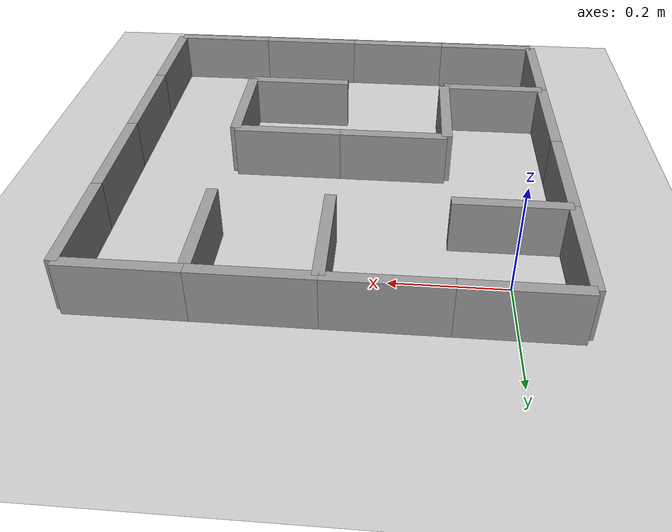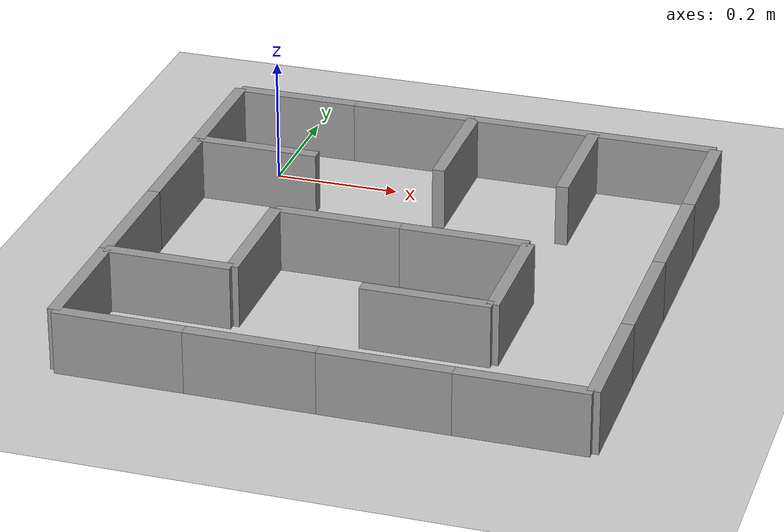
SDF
<?xml version="1.0" ?>
<sdf version="1.6">
  <world name="micromouse_world">

    <include>
      <uri>model://ground_plane</uri>
    </include>

    <model name="wall_1">
      <static>true</static>
      <pose>-0.1 0.0 0.05 0 0 0</pose>
      <link name="link">
        <collision name="collision">
          <geometry>
            <box><size>0.02 0.2 0.1</size></box>
          </geometry>
        </collision>
        <visual name="visual">
          <geometry>
            <box><size>0.02 0.2 0.1</size></box>
          </geometry>
          <material><ambient>0.6 0.6 0.6 1</ambient></material>
        </visual>
      </link>
    </model>

    <model name="wall_2">
      <static>true</static>
      <pose>0.0 0.1 0.05 0 0 0</pose>
      <link name="link">
        <collision name="collision">
          <geometry>
            <box><size>0.2 0.02 0.1</size></box>
          </geometry>
        </collision>
        <visual name="visual">
          <geometry>
            <box><size>0.2 0.02 0.1</size></box>
          </geometry>
          <material><ambient>0.6 0.6 0.6 1</ambient></material>
        </visual>
      </link>
    </model>

    <model name="wall_3">
      <static>true</static>
      <pose>0.2 0.1 0.05 0 0 0</pose>
      <link name="link">
        <collision name="collision">
          <geometry>
            <box><size>0.2 0.02 0.1</size></box>
          </geometry>
        </collision>
        <visual name="visual">
          <geometry>
            <box><size>0.2 0.02 0.1</size></box>
          </geometry>
          <material><ambient>0.6 0.6 0.6 1</ambient></material>
        </visual>
      </link>
    </model>

    <model name="wall_4">
      <static>true</static>
      <pose>0.30000000000000004 0.0 0.05 0 0 0</pose>
      <link name="link">
        <collision name="collision">
          <geometry>
            <box><size>0.02 0.2 0.1</size></box>
          </geometry>
        </collision>
        <visual name="visual">
          <geometry>
            <box><size>0.02 0.2 0.1</size></box>
          </geometry>
          <material><ambient>0.6 0.6 0.6 1</ambient></material>
        </visual>
      </link>
    </model>

    <model name="wall_5">
      <static>true</static>
      <pose>0.4 0.1 0.05 0 0 0</pose>
      <link name="link">
        <collision name="collision">
          <geometry>
            <box><size>0.2 0.02 0.1</size></box>
          </geometry>
        </collision>
        <visual name="visual">
          <geometry>
            <box><size>0.2 0.02 0.1</size></box>
          </geometry>
          <material><ambient>0.6 0.6 0.6 1</ambient></material>
        </visual>
      </link>
    </model>

    <model name="wall_6">
      <static>true</static>
      <pose>0.5000000000000001 0.0 0.05 0 0 0</pose>
      <link name="link">
        <collision name="collision">
          <geometry>
            <box><size>0.02 0.2 0.1</size></box>
          </geometry>
        </collision>
        <visual name="visual">
          <geometry>
            <box><size>0.02 0.2 0.1</size></box>
          </geometry>
          <material><ambient>0.6 0.6 0.6 1</ambient></material>
        </visual>
      </link>
    </model>

    <model name="wall_7">
      <static>true</static>
      <pose>0.6000000000000001 0.1 0.05 0 0 0</pose>
      <link name="link">
        <collision name="collision">
          <geometry>
            <box><size>0.2 0.02 0.1</size></box>
          </geometry>
        </collision>
        <visual name="visual">
          <geometry>
            <box><size>0.2 0.02 0.1</size></box>
          </geometry>
          <material><ambient>0.6 0.6 0.6 1</ambient></material>
        </visual>
      </link>
    </model>

    <model name="wall_8">
      <static>true</static>
      <pose>-0.1 -0.2 0.05 0 0 0</pose>
      <link name="link">
        <collision name="collision">
          <geometry>
            <box><size>0.02 0.2 0.1</size></box>
          </geometry>
        </collision>
        <visual name="visual">
          <geometry>
            <box><size>0.02 0.2 0.1</size></box>
          </geometry>
          <material><ambient>0.6 0.6 0.6 1</ambient></material>
        </visual>
      </link>
    </model>

    <model name="wall_9">
      <static>true</static>
      <pose>0.0 -0.1 0.05 0 0 0</pose>
      <link name="link">
        <collision name="collision">
          <geometry>
            <box><size>0.2 0.02 0.1</size></box>
          </geometry>
        </collision>
        <visual name="visual">
          <geometry>
            <box><size>0.2 0.02 0.1</size></box>
          </geometry>
          <material><ambient>0.6 0.6 0.6 1</ambient></material>
        </visual>
      </link>
    </model>

    <model name="wall_10">
      <static>true</static>
      <pose>-0.1 -0.4 0.05 0 0 0</pose>
      <link name="link">
        <collision name="collision">
          <geometry>
            <box><size>0.02 0.2 0.1</size></box>
          </geometry>
        </collision>
        <visual name="visual">
          <geometry>
            <box><size>0.02 0.2 0.1</size></box>
          </geometry>
          <material><ambient>0.6 0.6 0.6 1</ambient></material>
        </visual>
      </link>
    </model>

    <model name="wall_11">
      <static>true</static>
      <pose>0.1 -0.4 0.05 0 0 0</pose>
      <link name="link">
        <collision name="collision">
          <geometry>
            <box><size>0.02 0.2 0.1</size></box>
          </geometry>
        </collision>
        <visual name="visual">
          <geometry>
            <box><size>0.02 0.2 0.1</size></box>
          </geometry>
          <material><ambient>0.6 0.6 0.6 1</ambient></material>
        </visual>
      </link>
    </model>

    <model name="wall_12">
      <static>true</static>
      <pose>0.2 -0.30000000000000004 0.05 0 0 0</pose>
      <link name="link">
        <collision name="collision">
          <geometry>
            <box><size>0.2 0.02 0.1</size></box>
          </geometry>
        </collision>
        <visual name="visual">
          <geometry>
            <box><size>0.2 0.02 0.1</size></box>
          </geometry>
          <material><ambient>0.6 0.6 0.6 1</ambient></material>
        </visual>
      </link>
    </model>

    <model name="wall_13">
      <static>true</static>
      <pose>0.4 -0.30000000000000004 0.05 0 0 0</pose>
      <link name="link">
        <collision name="collision">
          <geometry>
            <box><size>0.2 0.02 0.1</size></box>
          </geometry>
        </collision>
        <visual name="visual">
          <geometry>
            <box><size>0.2 0.02 0.1</size></box>
          </geometry>
          <material><ambient>0.6 0.6 0.6 1</ambient></material>
        </visual>
      </link>
    </model>

    <model name="wall_14">
      <static>true</static>
      <pose>0.5000000000000001 -0.4 0.05 0 0 0</pose>
      <link name="link">
        <collision name="collision">
          <geometry>
            <box><size>0.02 0.2 0.1</size></box>
          </geometry>
        </collision>
        <visual name="visual">
          <geometry>
            <box><size>0.02 0.2 0.1</size></box>
          </geometry>
          <material><ambient>0.6 0.6 0.6 1</ambient></material>
        </visual>
      </link>
    </model>

    <model name="wall_15">
      <static>true</static>
      <pose>-0.1 -0.6000000000000001 0.05 0 0 0</pose>
      <link name="link">
        <collision name="collision">
          <geometry>
            <box><size>0.02 0.2 0.1</size></box>
          </geometry>
        </collision>
        <visual name="visual">
          <geometry>
            <box><size>0.02 0.2 0.1</size></box>
          </geometry>
          <material><ambient>0.6 0.6 0.6 1</ambient></material>
        </visual>
      </link>
    </model>

    <model name="wall_16">
      <static>true</static>
      <pose>0.0 -0.5000000000000001 0.05 0 0 0</pose>
      <link name="link">
        <collision name="collision">
          <geometry>
            <box><size>0.2 0.02 0.1</size></box>
          </geometry>
        </collision>
        <visual name="visual">
          <geometry>
            <box><size>0.2 0.02 0.1</size></box>
          </geometry>
          <material><ambient>0.6 0.6 0.6 1</ambient></material>
        </visual>
      </link>
    </model>

    <model name="wall_17">
      <static>true</static>
      <pose>0.4 -0.5000000000000001 0.05 0 0 0</pose>
      <link name="link">
        <collision name="collision">
          <geometry>
            <box><size>0.2 0.02 0.1</size></box>
          </geometry>
        </collision>
        <visual name="visual">
          <geometry>
            <box><size>0.2 0.02 0.1</size></box>
          </geometry>
          <material><ambient>0.6 0.6 0.6 1</ambient></material>
        </visual>
      </link>
    </model>

    <model name="wall_18">
      <static>true</static>
      <pose>0.7000000000000001 0.0 0.05 0 0 0</pose>
      <link name="link">
        <collision name="collision">
          <geometry>
            <box><size>0.02 0.2 0.1</size></box>
          </geometry>
        </collision>
        <visual name="visual">
          <geometry>
            <box><size>0.02 0.2 0.1</size></box>
          </geometry>
          <material><ambient>0.6 0.6 0.6 1</ambient></material>
        </visual>
      </link>
    </model>

    <model name="wall_19">
      <static>true</static>
      <pose>0.7000000000000001 -0.2 0.05 0 0 0</pose>
      <link name="link">
        <collision name="collision">
          <geometry>
            <box><size>0.02 0.2 0.1</size></box>
          </geometry>
        </collision>
        <visual name="visual">
          <geometry>
            <box><size>0.02 0.2 0.1</size></box>
          </geometry>
          <material><ambient>0.6 0.6 0.6 1</ambient></material>
        </visual>
      </link>
    </model>

    <model name="wall_20">
      <static>true</static>
      <pose>0.7000000000000001 -0.4 0.05 0 0 0</pose>
      <link name="link">
        <collision name="collision">
          <geometry>
            <box><size>0.02 0.2 0.1</size></box>
          </geometry>
        </collision>
        <visual name="visual">
          <geometry>
            <box><size>0.02 0.2 0.1</size></box>
          </geometry>
          <material><ambient>0.6 0.6 0.6 1</ambient></material>
        </visual>
      </link>
    </model>

    <model name="wall_21">
      <static>true</static>
      <pose>0.7000000000000001 -0.6000000000000001 0.05 0 0 0</pose>
      <link name="link">
        <collision name="collision">
          <geometry>
            <box><size>0.02 0.2 0.1</size></box>
          </geometry>
        </collision>
        <visual name="visual">
          <geometry>
            <box><size>0.02 0.2 0.1</size></box>
          </geometry>
          <material><ambient>0.6 0.6 0.6 1</ambient></material>
        </visual>
      </link>
    </model>

    <model name="wall_22">
      <static>true</static>
      <pose>0.0 -0.7000000000000001 0.05 0 0 0</pose>
      <link name="link">
        <collision name="collision">
          <geometry>
            <box><size>0.2 0.02 0.1</size></box>
          </geometry>
        </collision>
        <visual name="visual">
          <geometry>
            <box><size>0.2 0.02 0.1</size></box>
          </geometry>
          <material><ambient>0.6 0.6 0.6 1</ambient></material>
        </visual>
      </link>
    </model>

    <model name="wall_23">
      <static>true</static>
      <pose>0.2 -0.7000000000000001 0.05 0 0 0</pose>
      <link name="link">
        <collision name="collision">
          <geometry>
            <box><size>0.2 0.02 0.1</size></box>
          </geometry>
        </collision>
        <visual name="visual">
          <geometry>
            <box><size>0.2 0.02 0.1</size></box>
          </geometry>
          <material><ambient>0.6 0.6 0.6 1</ambient></material>
        </visual>
      </link>
    </model>

    <model name="wall_24">
      <static>true</static>
      <pose>0.4 -0.7000000000000001 0.05 0 0 0</pose>
      <link name="link">
        <collision name="collision">
          <geometry>
            <box><size>0.2 0.02 0.1</size></box>
          </geometry>
        </collision>
        <visual name="visual">
          <geometry>
            <box><size>0.2 0.02 0.1</size></box>
          </geometry>
          <material><ambient>0.6 0.6 0.6 1</ambient></material>
        </visual>
      </link>
    </model>

    <model name="wall_25">
      <static>true</static>
      <pose>0.6000000000000001 -0.7000000000000001 0.05 0 0 0</pose>
      <link name="link">
        <collision name="collision">
          <geometry>
            <box><size>0.2 0.02 0.1</size></box>
          </geometry>
        </collision>
        <visual name="visual">
          <geometry>
            <box><size>0.2 0.02 0.1</size></box>
          </geometry>
          <material><ambient>0.6 0.6 0.6 1</ambient></material>
        </visual>
      </link>
    </model>

  </world>
</sdf>
